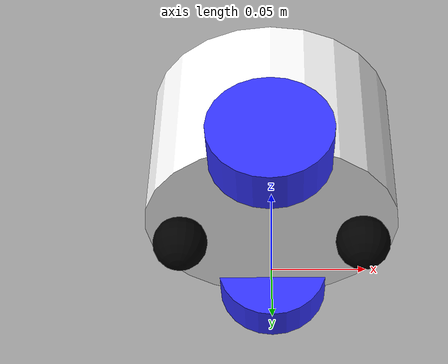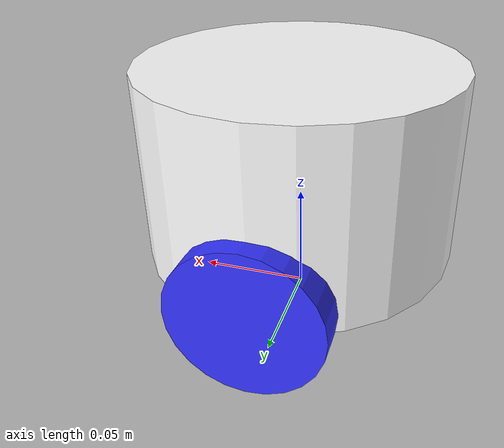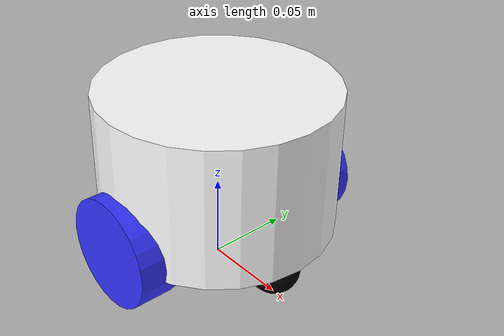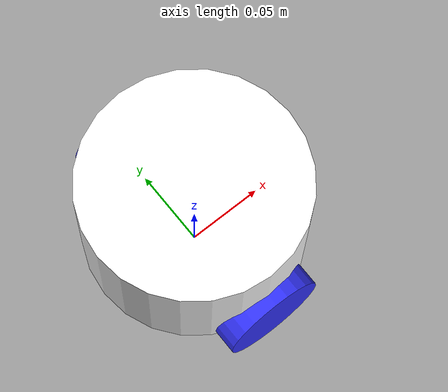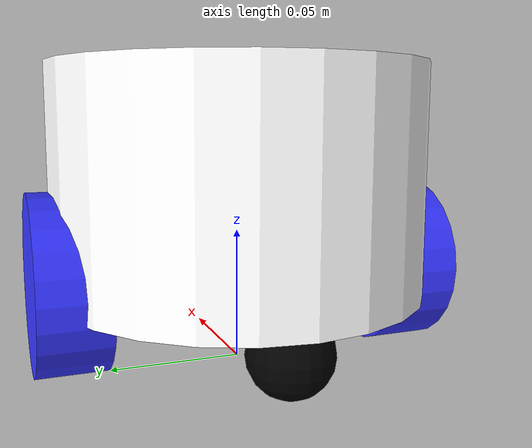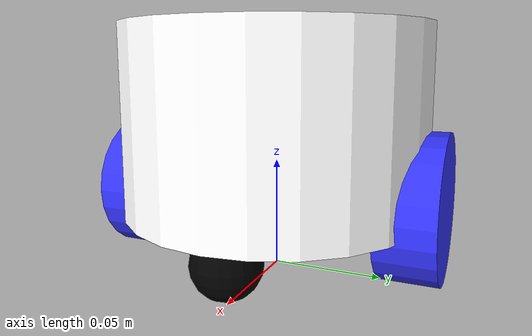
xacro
<?xml version="1.0"?>
<robot xmlns:xacro="http://www.ros.org/wiki/xacro" >

    <xacro:include filename="inertial_macros.xacro"/>

    <material name="white">
        <color rgba="1 1 1 1" />
    </material>

    <material name="orange">
        <color rgba="1 0.3 0.1 1"/>
    </material>

    <material name="blue">
        <color rgba="0.2 0.2 1 1"/>
    </material>

    <material name="black">
        <color rgba="0 0 0 1"/>
    </material>

    <material name="red">
        <color rgba="1 0 0 1"/>
    </material>

    <!-- BASE LINK -->

    <link name="base_link">

    </link>

    <!-- CHASSIS LINK -->

    <joint name="chassis_joint" type="fixed">
        <parent link="base_link"/>
        <child link="chassis"/>
        <origin xyz="0 0 0.035"/>
    </joint>

    <link name="chassis">
        <visual>
            <origin xyz="0 0 0.035"/>
            <geometry>
                <cylinder radius="0.07" length="0.085"/>
            </geometry>
            <material name="white"/>
        </visual>
        <collision>
            <origin xyz="0 0 0.035"/>
            <geometry>
                <cylinder radius="0.07" length="0.085"/>
            </geometry>
        </collision>
        <xacro:inertial_cylinder mass="0.1" length="${2*0.085}" radius="${2*0.07}">
            <origin xyz="0 0 0.035" rpy="0 0 0"/>
        </xacro:inertial_cylinder>
    </link>

    <gazebo reference="chassis">
        <material>Gazebo/White</material>
    </gazebo>

    <!-- LEFT WHEEL LINK -->

    <joint name="left_wheel_joint" type="continuous">
        <parent link="chassis"/>
        <child link="left_wheel"/>
        <origin xyz="0 0.065 0" rpy="-${pi/2} 0 0" />
        <axis xyz="0 0 1"/>
    </joint>

    <link name="left_wheel">
        <visual>
            <geometry>
                <cylinder radius="0.0325" length="0.025"/>
            </geometry>
            <material name="blue"/>
        </visual>
        <collision>
            <geometry>
                <cylinder radius="0.0325" length="0.025"/>
            </geometry>
        </collision>
        <xacro:inertial_cylinder mass="0.1" length="${2*0.025}" radius="${2*0.0325}">
            <origin xyz="0 0 0" rpy="0 0 0"/>
        </xacro:inertial_cylinder>
    </link>

    <gazebo reference="left_wheel">
        <material>Gazebo/Blue</material>
    </gazebo>

    <!-- RIGHT WHEEL LINK -->

    <joint name="right_wheel_joint" type="continuous">
        <parent link="chassis"/>
        <child link="right_wheel"/>
        <origin xyz="0 -0.065 0" rpy="${pi/2} 0 0" />
        <axis xyz="0 0 -1"/>
    </joint>

    <link name="right_wheel">
        <visual>
            <geometry>
                <cylinder radius="0.0325" length="0.025"/>
            </geometry>
            <material name="blue"/>
        </visual>
        <collision>
            <geometry>
                <cylinder radius="0.0325" length="0.025"/>
            </geometry>
        </collision>
        <xacro:inertial_cylinder mass="0.1" length="${2*0.025}" radius="${2*0.0325}">
            <origin xyz="0 0 0" rpy="0 0 0"/>
        </xacro:inertial_cylinder>
    </link>

    <gazebo reference="right_wheel">
        <material>Gazebo/Blue</material>
    </gazebo>

    <!-- CASTER WHEEL LINK 1 -->

    <joint name="caster_wheel_joint_1" type="fixed">
        <parent link="chassis"/>
        <child link="caster_wheel_1"/>
        <origin xyz="0.05 0 -0.0175"/>
    </joint>

    <link name="caster_wheel_1">
        <visual>
            <geometry>
                <sphere radius="0.015"/>
            </geometry>
            <material name="black"/>
        </visual>
        <collision>
            <geometry>
                <sphere radius="0.015"/>
            </geometry>
        </collision>
        <xacro:inertial_sphere mass="0.1" radius="${2*0.015}">
            <origin xyz="0 0 0" rpy="0 0 0"/>
        </xacro:inertial_sphere>
    </link>

    <gazebo reference="caster_wheel_1">
        <material>Gazebo/Black</material>
        <mu1 value="0.00001"/>
        <mu2 value="0.00001"/>
    </gazebo>

    <!-- CASTER WHEEL LINK 2 -->

    <joint name="caster_wheel_joint_2" type="fixed">
        <parent link="chassis"/>
        <child link="caster_wheel_2"/>
        <origin xyz="-0.05 0 -0.0175"/>
    </joint>

    <link name="caster_wheel_2">
        <visual>
            <geometry>
                <sphere radius="0.015"/>
            </geometry>
            <material name="black"/>
        </visual>
        <collision>
            <geometry>
                <sphere radius="0.015"/>
            </geometry>
        </collision>
        <xacro:inertial_sphere mass="0.1" radius="${2*0.015}">
            <origin xyz="0 0 0" rpy="0 0 0"/>
        </xacro:inertial_sphere>
    </link>

    <gazebo reference="caster_wheel_2">
        <material>Gazebo/Black</material>
        <mu1 value="0.00001"/>
        <mu2 value="0.00001"/>2*
    </gazebo>

</robot>
